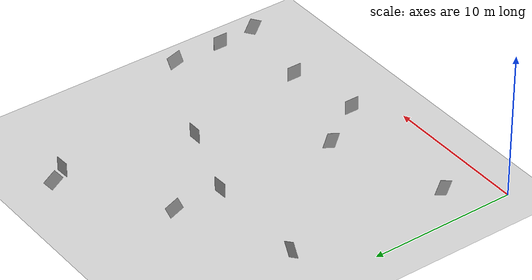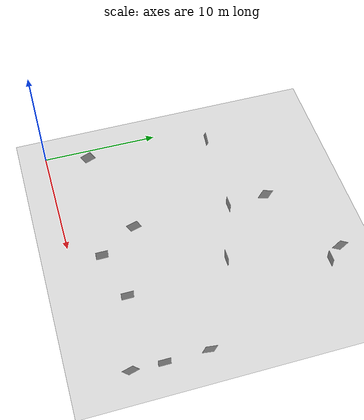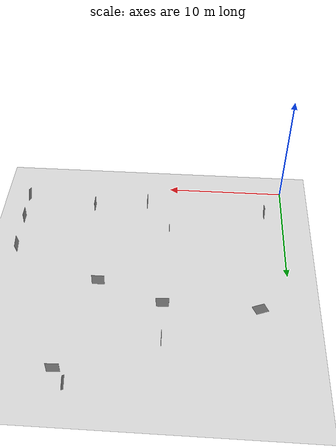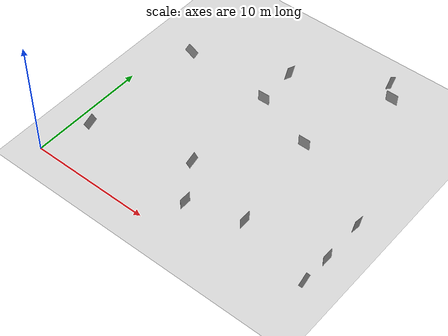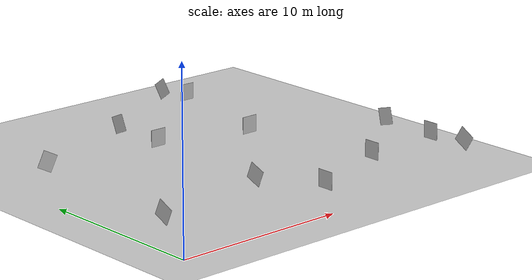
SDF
<sdf version="1.6">
 <world name="default">
  <light name="sun" type="directional">
   <pose>0 0 10 0 -0 0</pose>
   <diffuse>0.8 0.8 0.8 1</diffuse>
   <specular>0.2 0.2 0.2 1</specular>
   <attenuation>
    <range>1000</range>
    <constant>0.9</constant>
    <linear>0.01</linear>
    <quadratic>0.001</quadratic>
   </attenuation>
   <direction>-0.5 0.1 -0.9</direction>
  </light>
  <model name="ground_plane">
   <static>1</static>
   <link name="link">
    <collision name="collision">
     <geometry><plane><normal>0 0 1</normal><size>100 100</size></plane></geometry>
     <surface>
      <contact><collide_bitmask>65535</collide_bitmask></contact>
      <friction><ode><mu>100</mu><mu2>50</mu2></ode></friction>
     </surface>
    </collision>
    <visual name="visual">
     <cast_shadows>0</cast_shadows>
     <geometry><plane><normal>0 0 1</normal><size>100 100</size></plane></geometry>
     <material>
      <script><uri>file://media/materials/scripts/gazebo.material</uri><name>Gazebo/Grey</name></script>
     </material>
    </visual>
   </link>
  </model>
  <gravity>0 0 -9.8</gravity>
  <magnetic_field>6e-06 2.3e-05 -4.2e-05</magnetic_field>
  <atmosphere type="adiabatic"/>
  <physics name="default_physics" default="0" type="ode">
   <max_step_size>0.001</max_step_size>
   <real_time_factor>1</real_time_factor>
   <real_time_update_rate>1000</real_time_update_rate>
  </physics>
  <scene><ambient>0.4 0.4 0.4 1</ambient><background>0.7 0.7 0.7 1</background><shadows>1</shadows></scene>
  <audio><device>default</device></audio>
  <spherical_coordinates>
   <surface_model>EARTH_WGS84</surface_model>
   <latitude_deg>0</latitude_deg>
   <longitude_deg>0</longitude_deg>
   <elevation>0</elevation>
   <heading_deg>0</heading_deg>
  </spherical_coordinates>
  <model name="visualtag_14">
   <link name="main">
    <visual name="main_Visual">
     <geometry><box><size>1 1 0.01</size></box></geometry>
     <material>
      <script>
       <uri>model://visualtag_14/materials/scripts</uri>
       <uri>model://visualtag_14/materials/textures</uri>
       <name>visualtag_14</name>
      </script>
     </material>
    </visual>
   </link>
   <static>1</static>
   <pose>11.9296 2.58127 0.794172 3.14159 -1.56924 3.14159</pose>
  </model>
  <model name="visualtag_31">
   <link name="main">
    <visual name="main_Visual">
     <geometry><box><size>1 1 0.01</size></box></geometry>
     <material>
      <script>
       <uri>model://visualtag_31/materials/scripts</uri>
       <uri>model://visualtag_31/materials/textures</uri>
       <name>visualtag_31</name>
      </script>
     </material>
    </visual>
   </link>
   <static>1</static>
   <pose>1.71227 3.61489 1.11614 -1.57605 1.13439 1.56604</pose>
  </model>
  <model name="visualtag_31_0">
   <link name="main">
    <visual name="main_Visual">
     <geometry><box><size>1 0.999996 0.01</size></box></geometry>
     <material>
      <script>
       <uri>model://visualtag_31/materials/scripts</uri>
       <uri>model://visualtag_31/materials/textures</uri>
       <name>visualtag_31</name>
      </script>
     </material>
    </visual>
   </link>
   <static>1</static>
   <pose>9.82416 5.78024 0.747033 1.57893 -1.18377 -1.57417</pose>
  </model>
  <model name="visualtag_14_0">
   <link name="main">
    <visual name="main_Visual">
     <geometry><box><size>1 1 0.01</size></box></geometry>
     <material>
      <script>
       <uri>model://visualtag_14/materials/scripts</uri>
       <uri>model://visualtag_14/materials/textures</uri>
       <name>visualtag_14</name>
      </script>
     </material>
    </visual>
   </link>
   <static>1</static>
   <pose>2.46401 14.3169 1.01829 -1.57956 -1.08161 0.007736</pose>
  </model>
  <model name="visualtag_14_1">
   <link name="main">
    <visual name="main_Visual">
     <geometry><box><size>1 1 0.01</size></box></geometry>
     <material>
      <script>
       <uri>model://visualtag_14/materials/scripts</uri>
       <uri>model://visualtag_14/materials/textures</uri>
       <name>visualtag_14</name>
      </script>
     </material>
    </visual>
   </link>
   <static>1</static>
   <pose>15.1471 12.1914 0.974341 -1.57506 0 0</pose>
  </model>
  <model name="visualtag_14_2">
   <link name="main">
    <visual name="main_Visual">
     <geometry><box><size>1 1 0.01</size></box></geometry>
     <material>
      <script>
       <uri>model://visualtag_14/materials/scripts</uri>
       <uri>model://visualtag_14/materials/textures</uri>
       <name>visualtag_14</name>
      </script>
     </material>
    </visual>
   </link>
   <static>1</static>
   <pose>16.4564 21.5828 0.794038 1.57252 0.628974 1.57181</pose>
  </model>
  <model name="visualtag_30">
   <link name="main">
    <visual name="main_Visual">
     <geometry><box><size>1 1 0.01</size></box></geometry>
     <material>
      <script>
       <uri>model://visualtag_30/materials/scripts</uri>
       <uri>model://visualtag_30/materials/textures</uri>
       <name>visualtag_30</name>
      </script>
     </material>
    </visual>
   </link>
   <static>1</static>
   <pose>9.82185 17.4172 0.901153 -1.57146 -1.15979 1.57141</pose>
  </model>
  <model name="visualtag_30_0">
   <link name="main">
    <visual name="main_Visual">
     <geometry><box><size>1 1 0.01</size></box></geometry>
     <material>
      <script>
       <uri>model://visualtag_30/materials/scripts</uri>
       <uri>model://visualtag_30/materials/textures</uri>
       <name>visualtag_30</name>
      </script>
     </material>
    </visual>
   </link>
   <static>1</static>
   <pose>9.93175 14.0308 0.858516 1.59843 -1.55638 0</pose>
  </model>
  <model name="visualtag_14_3">
   <link name="main">
    <visual name="main_Visual">
     <geometry><box><size>1 1 0.01</size></box></geometry>
     <material>
      <script>
       <uri>model://visualtag_14/materials/scripts</uri>
       <uri>model://visualtag_14/materials/textures</uri>
       <name>visualtag_14</name>
      </script>
     </material>
    </visual>
   </link>
   <static>1</static>
   <pose>22.5156 2.41386 0.861547 1.56371 -1.03923 -1.56469</pose>
  </model>
  <model name="visualtag_30_1">
   <link name="main">
    <visual name="main_Visual">
     <geometry><box><size>1 1 0.01</size></box></geometry>
     <material>
      <script>
       <uri>model://visualtag_30/materials/scripts</uri>
       <uri>model://visualtag_30/materials/textures</uri>
       <name>visualtag_30</name>
      </script>
     </material>
    </visual>
   </link>
   <static>1</static>
   <pose>17.3885 20.3651 0.70252 1.59025 -1.5521 2e-06</pose>
  </model>
  <model name="visualtag_31_1">
   <link name="main">
    <visual name="main_Visual">
     <geometry><box><size>1 1 0.01</size></box></geometry>
     <material>
      <script>
       <uri>model://visualtag_31/materials/scripts</uri>
       <uri>model://visualtag_31/materials/textures</uri>
       <name>visualtag_31</name>
      </script>
     </material>
    </visual>
   </link>
   <static>1</static>
   <pose>16.4462 3.64948 1.21187 3.14159 1.56537 3.14159</pose>
  </model>
  <model name="visualtag_17">
   <link name="main">
    <visual name="main_Visual">
     <geometry><box><size>1 1 0.01</size></box></geometry>
     <material>
      <script>
       <uri>model://visualtag_17/materials/scripts</uri>
       <uri>model://visualtag_17/materials/textures</uri>
       <name>visualtag_17</name>
      </script>
     </material>
    </visual>
   </link>
   <static>1</static>
   <pose>22.5206 4.99901 0.739249 0 -1.56953 0</pose>
  </model>
  <model name="visualtag_17_0">
   <link name="main">
    <visual name="main_Visual">
     <geometry><box><size>1 1 0.01</size></box></geometry>
     <material>
      <script>
       <uri>model://visualtag_17/materials/scripts</uri>
       <uri>model://visualtag_17/materials/textures</uri>
       <name>visualtag_17</name>
      </script>
     </material>
    </visual>
   </link>
   <static>1</static>
   <pose>22.467 8.54449 0.796033 -1.3761 -1.29156 1.38346</pose>
  </model>
 </world>
</sdf>
